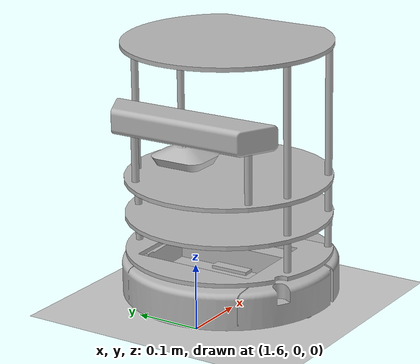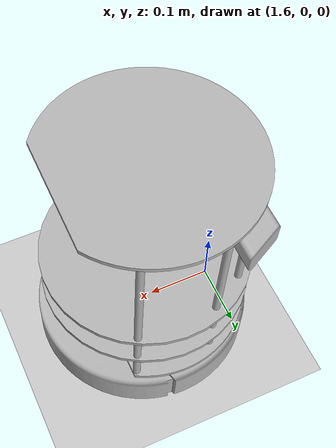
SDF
<sdf version="1.7">
 <world name="default">
  <model name="ground_plane">
   <static>1</static>
   <link name="link">
    <collision name="collision">
     <geometry><plane><normal>0 0 1</normal><size>100 100</size></plane></geometry>
     <surface>
      <contact><collide_bitmask>65535</collide_bitmask></contact>
      <friction><ode><mu>100</mu><mu2>50</mu2></ode></friction>
     </surface>
    </collision>
    <visual name="visual">
     <cast_shadows>0</cast_shadows>
     <geometry><plane><normal>0 0 1</normal><size>100 100</size></plane></geometry>
     <material>
      <script><uri>file://media/materials/scripts/gazebo.material</uri><name>Gazebo/Grey</name></script>
     </material>
    </visual>
   </link>
  </model>
  <model name="turtlebot">
   <link name="rack">
    <inertial>
     <pose>0.001453 -0.000453 0.029787 0 -0 0</pose>
     <inertia>
      <ixx>0.05864</ixx>
      <ixy>0.000124</ixy>
      <ixz>0.000615</ixz>
      <iyy>0.058786</iyy>
      <iyz>1.4e-05</iyz>
      <izz>1.53244</izz>
     </inertia>
     <mass>2.234</mass>
    </inertial>
    <collision name="plate_0_collision">
     <pose>-0.04334 0 0.084757 0 -0 0</pose>
     <geometry><box><size>0.233502 0.314845 0.006401</size></box></geometry>
    </collision>
    <visual name="plate_0_visual">
     <pose>-0.04334 0 0.084757 0 -0 0</pose>
     <geometry><mesh><uri>model://turtlebot/meshes/plate_0_logo.dae</uri></mesh></geometry>
    </visual>
    <collision name="plate_1_collision">
     <pose>-0.00266 0 0.141907 0 -0 0</pose>
     <geometry><box><size>0.314856 0.314856 0.006401</size></box></geometry>
    </collision>
    <visual name="plate_1_visual">
     <pose>-0.00266 0 0.141907 0 -0 0</pose>
     <geometry><mesh><uri>model://turtlebot/meshes/plate_1_logo.dae</uri></mesh></geometry>
    </visual>
    <collision name="plate_2_collision">
     <pose>-0.00266 0 0.199108 0 -0 0</pose>
     <geometry><box><size>0.314856 0.314856 0.006401</size></box></geometry>
    </collision>
    <visual name="plate_2_visual">
     <pose>-0.00266 0 0.199108 0 -0 0</pose>
     <geometry><mesh><uri>model://turtlebot/meshes/plate_1_logo.dae</uri></mesh></geometry>
    </visual>
    <collision name="plate_3_collision">
     <pose>-0.01582 0 0.405457 0 -0 0</pose>
     <geometry><box><size>0.288 0.315 0.006401</size></box></geometry>
    </collision>
    <visual name="plate_3_visual">
     <pose>-0.01582 0 0.405457 0 -0 0</pose>
     <geometry><mesh><uri>model://turtlebot/meshes/plate_2_logo.dae</uri></mesh></geometry>
    </visual>
    <collision name="spacer_0_collision">
     <pose>-0.00254 0.111468 0.079992 0 -0 0</pose>
     <geometry><cylinder><radius>0.0127</radius><length>0.003175</length></cylinder></geometry>
    </collision>
    <visual name="spacer_0_visual">
     <pose>-0.00254 0.111468 0.079992 0 -0 0</pose>
     <geometry><mesh><uri>model://turtlebot/meshes/68-02403-125_Spacer.dae</uri></mesh></geometry>
    </visual>
    <collision name="spacer_1_collision">
     <pose>-0.00254 -0.111468 0.079992 0 -0 0</pose>
     <geometry><cylinder><radius>0.0127</radius><length>0.003175</length></cylinder></geometry>
    </collision>
    <visual name="spacer_1_visual">
     <pose>-0.00254 -0.111468 0.079992 0 -0 0</pose>
     <geometry><mesh><uri>model://turtlebot/meshes/68-02403-125_Spacer.dae</uri></mesh></geometry>
    </visual>
    <collision name="spacer_2_collision">
     <pose>-0.07239 -0.111468 0.079992 0 -0 0</pose>
     <geometry><cylinder><radius>0.0127</radius><length>0.003175</length></cylinder></geometry>
    </collision>
    <visual name="spacer_2_visual">
     <pose>-0.07239 -0.111468 0.079992 0 -0 0</pose>
     <geometry><mesh><uri>model://turtlebot/meshes/68-02403-125_Spacer.dae</uri></mesh></geometry>
    </visual>
    <collision name="spacer_3_collision">
     <pose>-0.07239 0.111468 0.079992 0 -0 0</pose>
     <geometry><cylinder><radius>0.0127</radius><length>0.003175</length></cylinder></geometry>
    </collision>
    <visual name="spacer_3_visual">
     <pose>-0.07239 0.111468 0.079992 0 -0 0</pose>
     <geometry><mesh><uri>model://turtlebot/meshes/68-02403-125_Spacer.dae</uri></mesh></geometry>
    </visual>
    <collision name="standoff_2in_0_collision">
     <pose>0.06764 0.13142 0.08798 0 -0 0</pose>
     <geometry><cylinder><radius>0.0381</radius><length>0.0635</length></cylinder></geometry>
    </collision>
    <visual name="standoff_2in_0_visual">
     <pose>0.06764 0.13142 0.08798 0 -0 0</pose>
     <geometry>
      <mesh><uri>model://turtlebot/meshes/68-04552-2000-RA_Turtlebot_M-F_Standoff.dae</uri></mesh>
     </geometry>
    </visual>
    <collision name="standoff_2in_1_collision">
     <pose>0.06764 -0.13142 0.08798 0 -0 0</pose>
     <geometry><cylinder><radius>0.0381</radius><length>0.0635</length></cylinder></geometry>
    </collision>
    <visual name="standoff_2in_1_visual">
     <pose>0.06764 -0.13142 0.08798 0 -0 0</pose>
     <geometry>
      <mesh><uri>model://turtlebot/meshes/68-04552-2000-RA_Turtlebot_M-F_Standoff.dae</uri></mesh>
     </geometry>
    </visual>
    <collision name="standoff_2in_2_collision">
     <pose>-0.052832 -0.13142 0.08798 0 -0 0</pose>
     <geometry><cylinder><radius>0.0381</radius><length>0.0635</length></cylinder></geometry>
    </collision>
    <visual name="standoff_2in_2_visual">
     <pose>-0.052832 -0.13142 0.08798 0 -0 0</pose>
     <geometry>
      <mesh><uri>model://turtlebot/meshes/68-04552-2000-RA_Turtlebot_M-F_Standoff.dae</uri></mesh>
     </geometry>
    </visual>
    <collision name="standoff_2in_3_collision">
     <pose>-0.052832 0.13142 0.08798 0 -0 0</pose>
     <geometry><cylinder><radius>0.0381</radius><length>0.0635</length></cylinder></geometry>
    </collision>
    <visual name="standoff_2in_3_visual">
     <pose>-0.052832 0.13142 0.08798 0 -0 0</pose>
     <geometry>
      <mesh><uri>model://turtlebot/meshes/68-04552-2000-RA_Turtlebot_M-F_Standoff.dae</uri></mesh>
     </geometry>
    </visual>
    <collision name="standoff_2in_4_collision">
     <pose>0.06764 0.13142 0.14513 0 -0 0</pose>
     <geometry><cylinder><radius>0.0381</radius><length>0.0635</length></cylinder></geometry>
    </collision>
    <visual name="standoff_2in_4_visual">
     <pose>0.06764 0.13142 0.14513 0 -0 0</pose>
     <geometry>
      <mesh><uri>model://turtlebot/meshes/68-04552-2000-RA_Turtlebot_M-F_Standoff.dae</uri></mesh>
     </geometry>
    </visual>
    <collision name="standoff_2in_5_collision">
     <pose>0.06764 -0.13142 0.14513 0 -0 0</pose>
     <geometry><cylinder><radius>0.0381</radius><length>0.0635</length></cylinder></geometry>
    </collision>
    <visual name="standoff_2in_5_visual">
     <pose>0.06764 -0.13142 0.14513 0 -0 0</pose>
     <geometry>
      <mesh><uri>model://turtlebot/meshes/68-04552-2000-RA_Turtlebot_M-F_Standoff.dae</uri></mesh>
     </geometry>
    </visual>
    <collision name="standoff_2in_6_collision">
     <pose>-0.052832 -0.13142 0.14513 0 -0 0</pose>
     <geometry><cylinder><radius>0.0381</radius><length>0.0635</length></cylinder></geometry>
    </collision>
    <visual name="standoff_2in_6_visual">
     <pose>-0.052832 -0.13142 0.14513 0 -0 0</pose>
     <geometry>
      <mesh><uri>model://turtlebot/meshes/68-04552-2000-RA_Turtlebot_M-F_Standoff.dae</uri></mesh>
     </geometry>
    </visual>
    <collision name="standoff_2in_7_collision">
     <pose>-0.052832 0.13142 0.14513 0 -0 0</pose>
     <geometry><cylinder><radius>0.0381</radius><length>0.0635</length></cylinder></geometry>
    </collision>
    <visual name="standoff_2in_7_visual">
     <pose>-0.052832 0.13142 0.14513 0 -0 0</pose>
     <geometry>
      <mesh><uri>model://turtlebot/meshes/68-04552-2000-RA_Turtlebot_M-F_Standoff.dae</uri></mesh>
     </geometry>
    </visual>
    <collision name="standoff_8in_0_collision">
     <pose>0.06764 0.13142 0.20228 0 -0 0</pose>
     <geometry><cylinder><radius>0.011113</radius><length>0.2032</length></cylinder></geometry>
    </collision>
    <visual name="standoff_8in_0_visual">
     <pose>0.06764 0.13142 0.20228 0 -0 0</pose>
     <geometry>
      <mesh><uri>model://turtlebot/meshes/68-02421-8000-RA_Turtlebot_F-F_Standoff.dae</uri></mesh>
     </geometry>
    </visual>
    <collision name="standoff_8in_1_collision">
     <pose>0.06764 -0.13142 0.20228 0 -0 0</pose>
     <geometry><cylinder><radius>0.011113</radius><length>0.2032</length></cylinder></geometry>
    </collision>
    <visual name="standoff_8in_1_visual">
     <pose>0.06764 -0.13142 0.20228 0 -0 0</pose>
     <geometry>
      <mesh><uri>model://turtlebot/meshes/68-02421-8000-RA_Turtlebot_F-F_Standoff.dae</uri></mesh>
     </geometry>
    </visual>
    <collision name="standoff_8in_2_collision">
     <pose>-0.052832 -0.13142 0.20228 0 -0 0</pose>
     <geometry><cylinder><radius>0.011113</radius><length>0.2032</length></cylinder></geometry>
    </collision>
    <visual name="standoff_8in_2_visual">
     <pose>-0.052832 -0.13142 0.20228 0 -0 0</pose>
     <geometry>
      <mesh><uri>model://turtlebot/meshes/68-02421-8000-RA_Turtlebot_F-F_Standoff.dae</uri></mesh>
     </geometry>
    </visual>
    <collision name="standoff_8in_3_collision">
     <pose>-0.052832 0.13142 0.20228 0 -0 0</pose>
     <geometry><cylinder><radius>0.011113</radius><length>0.2032</length></cylinder></geometry>
    </collision>
    <visual name="standoff_8in_3_visual">
     <pose>-0.052832 0.13142 0.20228 0 -0 0</pose>
     <geometry>
      <mesh><uri>model://turtlebot/meshes/68-02421-8000-RA_Turtlebot_F-F_Standoff.dae</uri></mesh>
     </geometry>
    </visual>
    <collision name="standoff_kinect_0_collision">
     <pose>-0.105098 0.098 0.202308 0 -0 0</pose>
     <geometry><cylinder><radius>0.001111</radius><length>0.008585</length></cylinder></geometry>
    </collision>
    <visual name="standoff_kinect_0_visual">
     <pose>-0.105098 0.098 0.202308 0 -0 0</pose>
     <geometry><mesh><uri>model://turtlebot/meshes/68-04556-RA_Kinect_Standoff_Assy.dae</uri></mesh></geometry>
    </visual>
    <collision name="standoff_kinect_1_collision">
     <pose>-0.105098 -0.098 0.202308 0 -0 0</pose>
     <geometry><cylinder><radius>0.001111</radius><length>0.008585</length></cylinder></geometry>
    </collision>
    <visual name="standoff_kinect_1_visual">
     <pose>-0.105098 -0.098 0.202308 0 -0 0</pose>
     <geometry><mesh><uri>model://turtlebot/meshes/68-04556-RA_Kinect_Standoff_Assy.dae</uri></mesh></geometry>
    </visual>
    <sensor name="laser" type="ray">
     <pose>-0.065 0 0.092 0 -0 0</pose>
     <ray>
      <scan>
       <horizontal>
        <samples>180</samples>
        <resolution>1</resolution>
        <min_angle>-2.26893</min_angle>
        <max_angle>2.26893</max_angle>
       </horizontal>
       <vertical><samples>1</samples><min_angle>0</min_angle><max_angle>0</max_angle></vertical>
      </scan>
      <range><min>0.08</min><max>10</max><resolution>0.01</resolution></range>
     </ray>
     <update_rate>20</update_rate>
    </sensor>
   </link>
   <frame name="create::__model__" attached_to="create::base">
    <pose relative_to="__model__">0 0 0 0 -0 0</pose>
   </frame>
   <link name="create::base">
    <inertial>
     <pose>0.001453 -0.000453 0.029787 0 -0 0</pose>
     <inertia>
      <ixx>0.05864</ixx>
      <ixy>0.000124</ixy>
      <ixz>0.000615</ixz>
      <iyy>0.058786</iyy>
      <iyz>1.4e-05</iyz>
      <izz>1.53244</izz>
     </inertia>
     <mass>2.234</mass>
    </inertial>
    <collision name="base_collision">
     <pose>0 0 0.0478 0 -0 0</pose>
     <geometry><cylinder><radius>0.016495</radius><length>0.061163</length></cylinder></geometry>
    </collision>
    <visual name="base_visual">
     <pose>0 0 0.0478 0 -0 0</pose>
     <geometry><mesh><uri>model://create/meshes/create_body.dae</uri></mesh></geometry>
    </visual>
    <collision name="front_wheel_collision">
     <pose>0.13 0 0.017 -0 1.5707 1.5707</pose>
     <geometry><sphere><radius>0.018</radius></sphere></geometry>
     <surface>
      <friction><ode><mu>0</mu><mu2>0</mu2><fdir1>0 0 0</fdir1><slip1>0</slip1><slip2>0</slip2></ode></friction>
     </surface>
    </collision>
    <visual name="front_wheel_visual">
     <pose>0.13 0 0.017 -0 1.5707 1.5707</pose>
     <geometry><sphere><radius>0.009</radius></sphere></geometry>
    </visual>
    <collision name="rear_wheel_collision">
     <pose>-0.13 0 0.017 -0 1.5707 1.5707</pose>
     <geometry><sphere><radius>0.015</radius></sphere></geometry>
     <surface>
      <friction><ode><mu>0</mu><mu2>0</mu2><fdir1>0 0 0</fdir1><slip1>0</slip1><slip2>0</slip2></ode></friction>
     </surface>
    </collision>
    <visual name="rear_wheel_visual">
     <pose>-0.13 0 0.017 -0 1.5707 1.5707</pose>
     <geometry><sphere><radius>0.0075</radius></sphere></geometry>
    </visual>
    <sensor name="left_cliff_sensor" type="ray">
     <pose>0.07 0.14 0.027 0 1.57079 0</pose>
     <ray>
      <scan>
       <horizontal>
        <samples>1</samples>
        <resolution>1</resolution>
        <min_angle>0</min_angle>
        <max_angle>0</max_angle>
       </horizontal>
       <vertical><samples>1</samples><min_angle>0</min_angle><max_angle>0</max_angle></vertical>
      </scan>
      <range><min>0.01</min><max>0.04</max><resolution>0.1</resolution></range>
     </ray>
    </sensor>
    <sensor name="leftfront_cliff_sensor" type="ray">
     <pose>0.15 0.04 0.027 0 1.57079 0</pose>
     <ray>
      <scan>
       <horizontal>
        <samples>1</samples>
        <resolution>1</resolution>
        <min_angle>0</min_angle>
        <max_angle>0</max_angle>
       </horizontal>
       <vertical><samples>1</samples><min_angle>0</min_angle><max_angle>0</max_angle></vertical>
      </scan>
      <range><min>0.01</min><max>0.04</max><resolution>0.1</resolution></range>
     </ray>
    </sensor>
    <sensor name="right_cliff_sensor" type="ray">
     <pose>0.07 -0.14 0.027 0 1.57079 0</pose>
     <ray>
      <scan>
       <horizontal>
        <samples>1</samples>
        <resolution>1</resolution>
        <min_angle>0</min_angle>
        <max_angle>0</max_angle>
       </horizontal>
       <vertical><samples>1</samples><min_angle>0</min_angle><max_angle>0</max_angle></vertical>
      </scan>
      <range><min>0.01</min><max>0.04</max><resolution>0.1</resolution></range>
     </ray>
    </sensor>
    <sensor name="rightfront_cliff_sensor" type="ray">
     <pose>0.15 -0.04 0.027 0 1.57079 0</pose>
     <ray>
      <scan>
       <horizontal>
        <samples>1</samples>
        <resolution>1</resolution>
        <min_angle>0</min_angle>
        <max_angle>0</max_angle>
       </horizontal>
       <vertical><samples>1</samples><min_angle>0</min_angle><max_angle>0</max_angle></vertical>
      </scan>
      <range><min>0.01</min><max>0.04</max><resolution>0.1</resolution></range>
     </ray>
    </sensor>
    <sensor name="wall_sensor" type="ray">
     <pose>0.09 -0.12 0.059 0 0 -1</pose>
     <ray>
      <scan>
       <horizontal>
        <samples>1</samples>
        <resolution>1</resolution>
        <min_angle>0</min_angle>
        <max_angle>0</max_angle>
       </horizontal>
       <vertical><samples>1</samples><min_angle>0</min_angle><max_angle>0</max_angle></vertical>
      </scan>
      <range><min>0.016</min><max>0.04</max><resolution>0.1</resolution></range>
     </ray>
    </sensor>
    <pose relative_to="create::__model__">0 0 0 0 -0 0</pose>
   </link>
   <link name="create::left_wheel">
    <pose relative_to="create::__model__">0 0.13 0.032 0 -0 0</pose>
    <inertial>
     <inertia><ixx>0.001</ixx><ixy>0</ixy><ixz>0</ixz><iyy>0.001</iyy><iyz>0</iyz><izz>0.001</izz></inertia>
     <mass>0.01</mass>
    </inertial>
    <collision name="collision">
     <pose>0 0 0 -0 1.5707 1.5707</pose>
     <geometry><cylinder><radius>0.033</radius><length>0.023</length></cylinder></geometry>
     <surface>
      <friction><ode><mu>10</mu><mu2>10</mu2><fdir1>0 0 0</fdir1><slip1>0</slip1><slip2>0</slip2></ode></friction>
     </surface>
    </collision>
    <visual name="visual">
     <pose>0 0 0 -0 1.5707 1.5707</pose>
     <geometry><cylinder><radius>0.033</radius><length>0.023</length></cylinder></geometry>
    </visual>
   </link>
   <link name="create::right_wheel">
    <pose relative_to="create::__model__">0 -0.13 0.032 0 -0 0</pose>
    <inertial>
     <inertia><ixx>0.001</ixx><ixy>0</ixy><ixz>0</ixz><iyy>0.001</iyy><iyz>0</iyz><izz>0.001</izz></inertia>
     <mass>0.01</mass>
    </inertial>
    <collision name="collision">
     <pose>0 0 0 -0 1.5707 1.5707</pose>
     <geometry><cylinder><radius>0.033</radius><length>0.023</length></cylinder></geometry>
     <surface>
      <friction><ode><mu>10</mu><mu2>10</mu2><fdir1>0 0 0</fdir1><slip1>0</slip1><slip2>0</slip2></ode></friction>
     </surface>
    </collision>
    <visual name="visual">
     <pose>0 0 0 -0 1.5707 1.5707</pose>
     <geometry><cylinder><radius>0.033</radius><length>0.023</length></cylinder></geometry>
    </visual>
   </link>
   <joint name="create::left_wheel" type="revolute">
    <parent>create::base</parent>
    <child>create::left_wheel</child>
    <axis>
     <xyz expressed_in="create::__model__">0 1 0</xyz>
     <limit><lower>-1e+16</lower><upper>1e+16</upper></limit>
     <dynamics><spring_reference>0</spring_reference><spring_stiffness>0</spring_stiffness></dynamics>
    </axis>
   </joint>
   <joint name="create::right_wheel" type="revolute">
    <parent>create::base</parent>
    <child>create::right_wheel</child>
    <axis>
     <xyz expressed_in="create::__model__">0 1 0</xyz>
     <limit><lower>-1e+16</lower><upper>1e+16</upper></limit>
     <dynamics><spring_reference>0</spring_reference><spring_stiffness>0</spring_stiffness></dynamics>
    </axis>
   </joint>
   <frame name="kinect::__model__" attached_to="kinect::link">
    <pose relative_to="__model__">-0.087098 0 0.303857 0 -0 0</pose>
   </frame>
   <link name="kinect::link">
    <inertial>
     <mass>0.1</mass>
     <inertia><ixx>1</ixx><ixy>0</ixy><ixz>0</ixz><iyy>1</iyy><iyz>0</iyz><izz>1</izz></inertia>
    </inertial>
    <collision name="collision"><geometry><box><size>0.073 0.276 0.072</size></box></geometry></collision>
    <visual name="visual"><geometry><mesh><uri>model://kinect/meshes/kinect.dae</uri></mesh></geometry></visual>
    <sensor name="camera" type="depth">
     <update_rate>20</update_rate>
     <camera>
      <horizontal_fov>1.0472</horizontal_fov>
      <image><width>640</width><height>480</height><format>R8G8B8</format></image>
      <clip><near>0.05</near><far>3</far></clip>
     </camera>
    </sensor>
    <pose relative_to="kinect::__model__">0 0 0 0 -0 0</pose>
   </link>
   <joint name="create_rack" type="revolute">
    <parent>create::base</parent>
    <child>rack</child>
    <axis>
     <xyz expressed_in="__model__">0 0 1</xyz>
     <limit><lower>0</lower><upper>0</upper></limit>
     <dynamics><spring_reference>0</spring_reference><spring_stiffness>0</spring_stiffness></dynamics>
    </axis>
   </joint>
   <joint name="kinect_rack" type="revolute">
    <parent>kinect::link</parent>
    <child>rack</child>
    <axis>
     <xyz expressed_in="__model__">0 0 1</xyz>
     <limit><lower>0</lower><upper>0</upper></limit>
     <dynamics><spring_reference>0</spring_reference><spring_stiffness>0</spring_stiffness></dynamics>
    </axis>
   </joint>
   <pose>1.73019 0.021502 0.000972 -2.6e-05 -0.021228 -0.00085</pose>
  </model>
 </world>
</sdf>
